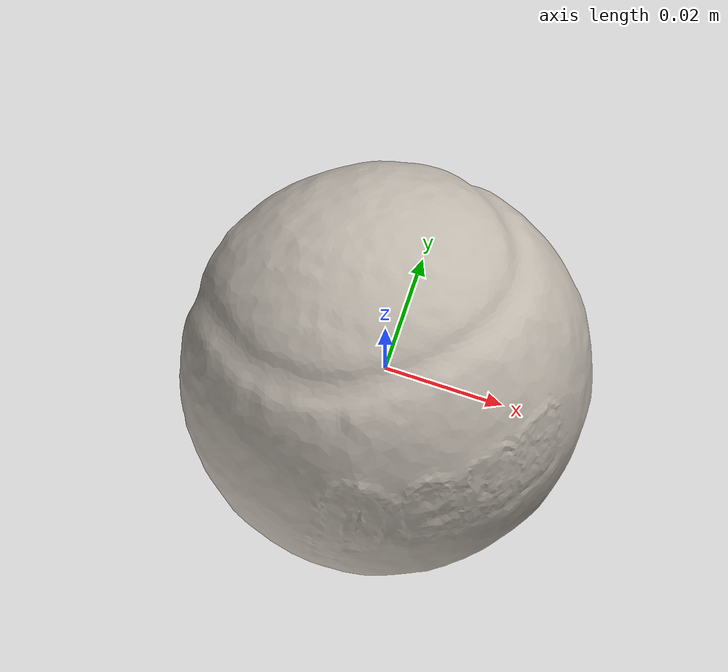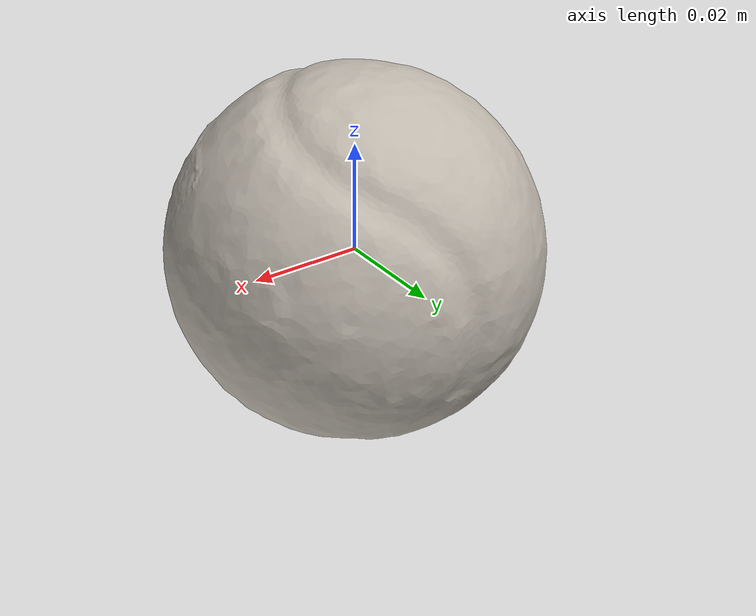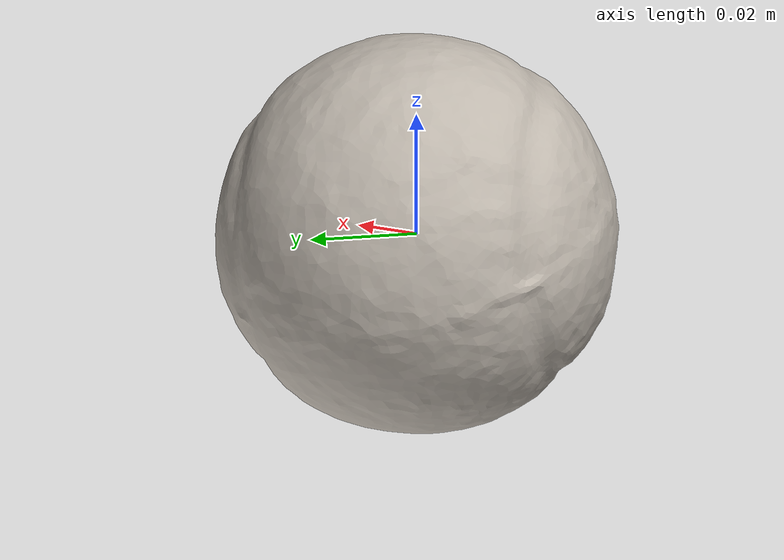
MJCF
<mujoco model="tennis_ball">
  <compiler angle="radian" />

  <asset>
    <mesh name="tennis_ball_visual_mesh" file="tennis_ball/textured.obj" />
    <mesh name="tennis_ball_collision_mesh_0" file="tennis_ball/textured_coacd_0.stl" />
    <texture name="tennis_ball_texture" type="2d" file="tennis_ball/texture_map.png" />
    <material name="tennis_ball_material" texture="tennis_ball_texture" />
  </asset>

  <worldbody>
    <body name="tennis_ball" pos="0 0 0" euler="0 0 0">
      <freejoint name="tennis_ball_joint" />
      <geom name="tennis_ball_visual_geom" type="mesh" mesh="tennis_ball_visual_mesh" material="tennis_ball_material" pos="0.0 -0.0 -0.0" euler="0 0 0" contype="0" conaffinity="0" group="0" />
      <geom name="tennis_ball_collision_geom_0" type="mesh" mesh="tennis_ball_collision_mesh_0" pos="0.0 -0.0 -0.0" euler="0 0 0" contype="1" conaffinity="1" group="3" />
      <inertial pos="0 0 0" euler="0 0 0" mass="0.058" diaginertia="0.001 0.001 0.001" />
    </body>
  </worldbody>
</mujoco>
